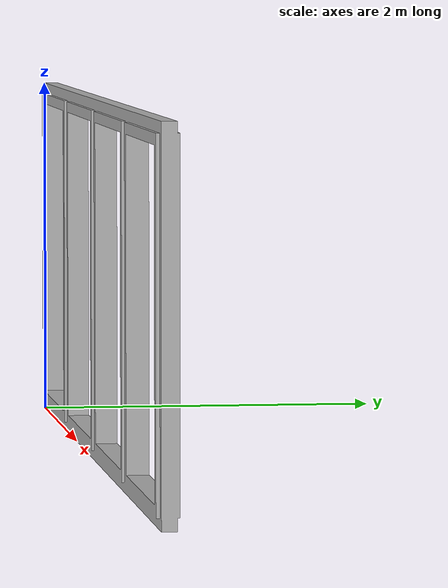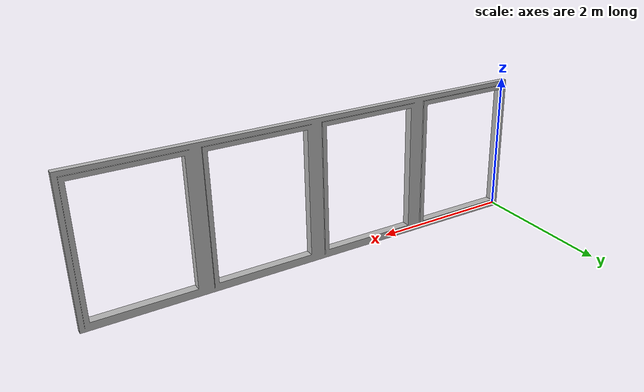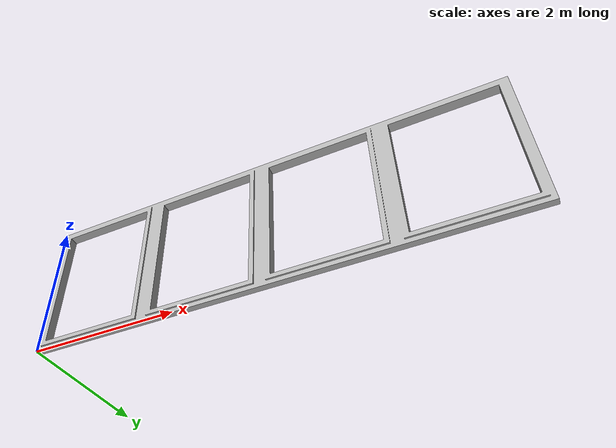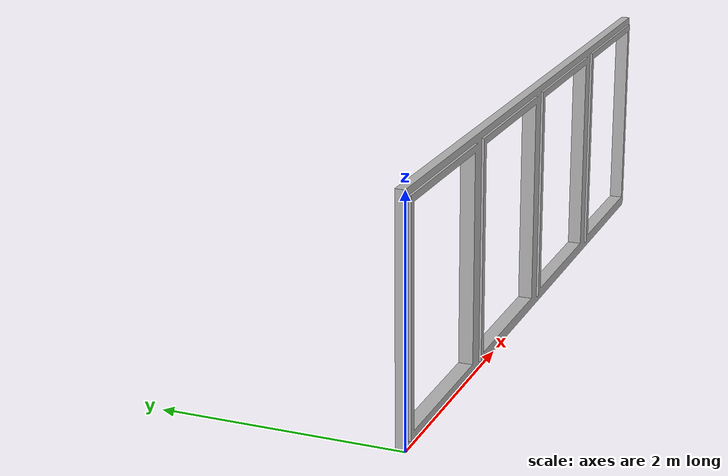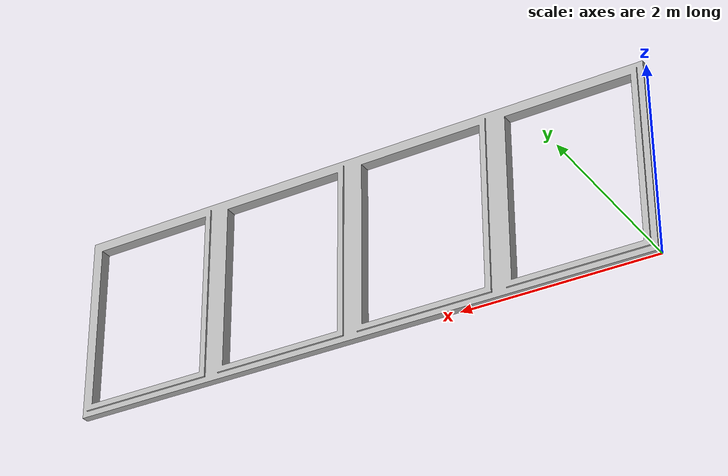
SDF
<?xml version="1.0"?>
<sdf version="1.5">
<model name="okna">
	<pose>0 0 0 0 0 0</pose>
	<static>true</static>
	<link name="okna_collision">
		<collision name="okna_collision">
		<geometry>
			<mesh>
				<uri>model://okna/meshes/model.dae</uri>

			</mesh>
		</geometry>
		</collision>
	<visual name="okna_mesh">
	<cast_shadows>false</cast_shadows>
		<geometry>
			<mesh>
				<uri> model://okna/meshes/model.dae</uri>

			</mesh>
		</geometry>
		<material>
		<script>
			<uri> model://okna/material/scripts</uri>
			<uri> model://okna/material/textures</uri>
			<name>okna/Diffuse</name>
		</script>
		</material>

	</visual>
</link>
</model>
</sdf>
